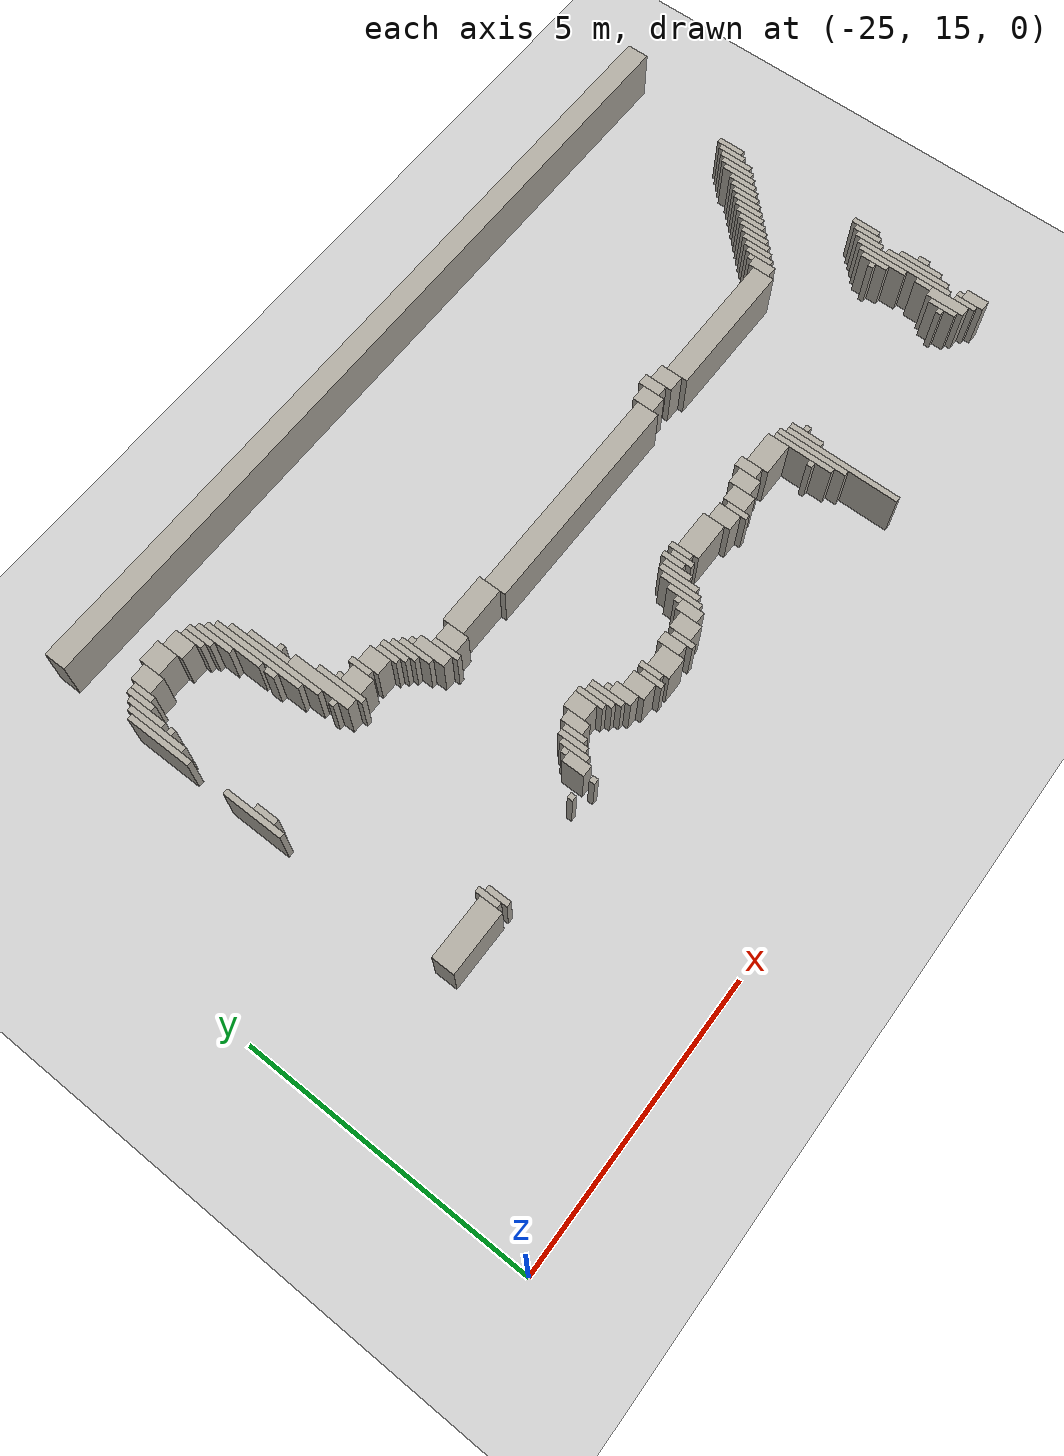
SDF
<sdf version="1.6">
 <world name="willow_office">
  <include><uri>model://sun</uri></include>
  <include><uri>model://ground_plane</uri></include>
  <model name="willow_office_walls">
   <static>true</static>
   <link name="w1010">
    <pose>-12.535 18.312 0.500 0 0 0</pose>
    <collision name="c"><geometry><box><size>0.100 2.100 1.000</size></box></geometry></collision>
    <visual name="v">
     <geometry><box><size>0.100 2.100 1.000</size></box></geometry>
     <material><ambient>0.68 0.66 0.62 1</ambient><diffuse>0.68 0.66 0.62 1</diffuse></material>
    </visual>
   </link>
   <link name="w1034">
    <pose>-8.585 18.262 0.500 0 0 0</pose>
    <collision name="c"><geometry><box><size>0.200 0.400 1.000</size></box></geometry></collision>
    <visual name="v">
     <geometry><box><size>0.200 0.400 1.000</size></box></geometry>
     <material><ambient>0.68 0.66 0.62 1</ambient><diffuse>0.68 0.66 0.62 1</diffuse></material>
    </visual>
   </link>
   <link name="w1035">
    <pose>-22.035 18.362 0.500 0 0 0</pose>
    <collision name="c"><geometry><box><size>1.100 0.400 1.000</size></box></geometry></collision>
    <visual name="v">
     <geometry><box><size>1.100 0.400 1.000</size></box></geometry>
     <material><ambient>0.68 0.66 0.62 1</ambient><diffuse>0.68 0.66 0.62 1</diffuse></material>
    </visual>
   </link>
   <link name="w1036">
    <pose>-21.335 18.362 0.500 0 0 0</pose>
    <collision name="c"><geometry><box><size>0.100 0.400 1.000</size></box></geometry></collision>
    <visual name="v">
     <geometry><box><size>0.100 0.400 1.000</size></box></geometry>
     <material><ambient>0.68 0.66 0.62 1</ambient><diffuse>0.68 0.66 0.62 1</diffuse></material>
    </visual>
   </link>
   <link name="w1037">
    <pose>-12.635 18.812 0.500 0 0 0</pose>
    <collision name="c"><geometry><box><size>0.100 1.300 1.000</size></box></geometry></collision>
    <visual name="v">
     <geometry><box><size>0.100 1.300 1.000</size></box></geometry>
     <material><ambient>0.68 0.66 0.62 1</ambient><diffuse>0.68 0.66 0.62 1</diffuse></material>
    </visual>
   </link>
   <link name="w1038">
    <pose>-8.735 18.362 0.500 0 0 0</pose>
    <collision name="c"><geometry><box><size>0.100 0.400 1.000</size></box></geometry></collision>
    <visual name="v">
     <geometry><box><size>0.100 0.400 1.000</size></box></geometry>
     <material><ambient>0.68 0.66 0.62 1</ambient><diffuse>0.68 0.66 0.62 1</diffuse></material>
    </visual>
   </link>
   <link name="w1041">
    <pose>-21.435 18.462 0.500 0 0 0</pose>
    <collision name="c"><geometry><box><size>0.100 0.400 1.000</size></box></geometry></collision>
    <visual name="v">
     <geometry><box><size>0.100 0.400 1.000</size></box></geometry>
     <material><ambient>0.68 0.66 0.62 1</ambient><diffuse>0.68 0.66 0.62 1</diffuse></material>
    </visual>
   </link>
   <link name="w1042">
    <pose>-19.135 18.312 0.500 0 0 0</pose>
    <collision name="c"><geometry><box><size>0.100 0.100 1.000</size></box></geometry></collision>
    <visual name="v">
     <geometry><box><size>0.100 0.100 1.000</size></box></geometry>
     <material><ambient>0.68 0.66 0.62 1</ambient><diffuse>0.68 0.66 0.62 1</diffuse></material>
    </visual>
   </link>
   <link name="w1043">
    <pose>-8.885 18.612 0.500 0 0 0</pose>
    <collision name="c"><geometry><box><size>0.200 0.700 1.000</size></box></geometry></collision>
    <visual name="v">
     <geometry><box><size>0.200 0.700 1.000</size></box></geometry>
     <material><ambient>0.68 0.66 0.62 1</ambient><diffuse>0.68 0.66 0.62 1</diffuse></material>
    </visual>
   </link>
   <link name="w1044">
    <pose>-19.535 18.412 0.500 0 0 0</pose>
    <collision name="c"><geometry><box><size>0.100 0.100 1.000</size></box></geometry></collision>
    <visual name="v">
     <geometry><box><size>0.100 0.100 1.000</size></box></geometry>
     <material><ambient>0.68 0.66 0.62 1</ambient><diffuse>0.68 0.66 0.62 1</diffuse></material>
    </visual>
   </link>
   <link name="w1045">
    <pose>-17.335 18.562 0.500 0 0 0</pose>
    <collision name="c"><geometry><box><size>0.100 0.400 1.000</size></box></geometry></collision>
    <visual name="v">
     <geometry><box><size>0.100 0.400 1.000</size></box></geometry>
     <material><ambient>0.68 0.66 0.62 1</ambient><diffuse>0.68 0.66 0.62 1</diffuse></material>
    </visual>
   </link>
   <link name="w1046">
    <pose>-16.985 18.562 0.500 0 0 0</pose>
    <collision name="c"><geometry><box><size>0.400 0.400 1.000</size></box></geometry></collision>
    <visual name="v">
     <geometry><box><size>0.400 0.400 1.000</size></box></geometry>
     <material><ambient>0.68 0.66 0.62 1</ambient><diffuse>0.68 0.66 0.62 1</diffuse></material>
    </visual>
   </link>
   <link name="w1047">
    <pose>-16.535 18.562 0.500 0 0 0</pose>
    <collision name="c"><geometry><box><size>0.100 0.400 1.000</size></box></geometry></collision>
    <visual name="v">
     <geometry><box><size>0.100 0.400 1.000</size></box></geometry>
     <material><ambient>0.68 0.66 0.62 1</ambient><diffuse>0.68 0.66 0.62 1</diffuse></material>
    </visual>
   </link>
   <link name="w1048">
    <pose>-12.735 18.912 0.500 0 0 0</pose>
    <collision name="c"><geometry><box><size>0.100 1.100 1.000</size></box></geometry></collision>
    <visual name="v">
     <geometry><box><size>0.100 1.100 1.000</size></box></geometry>
     <material><ambient>0.68 0.66 0.62 1</ambient><diffuse>0.68 0.66 0.62 1</diffuse></material>
    </visual>
   </link>
   <link name="w1049">
    <pose>-9.035 18.612 0.500 0 0 0</pose>
    <collision name="c"><geometry><box><size>0.100 0.500 1.000</size></box></geometry></collision>
    <visual name="v">
     <geometry><box><size>0.100 0.500 1.000</size></box></geometry>
     <material><ambient>0.68 0.66 0.62 1</ambient><diffuse>0.68 0.66 0.62 1</diffuse></material>
    </visual>
   </link>
   <link name="w1050">
    <pose>-19.085 18.662 0.500 0 0 0</pose>
    <collision name="c"><geometry><box><size>0.200 0.400 1.000</size></box></geometry></collision>
    <visual name="v">
     <geometry><box><size>0.200 0.400 1.000</size></box></geometry>
     <material><ambient>0.68 0.66 0.62 1</ambient><diffuse>0.68 0.66 0.62 1</diffuse></material>
    </visual>
   </link>
   <link name="w1051">
    <pose>-17.535 18.662 0.500 0 0 0</pose>
    <collision name="c"><geometry><box><size>0.300 0.400 1.000</size></box></geometry></collision>
    <visual name="v">
     <geometry><box><size>0.300 0.400 1.000</size></box></geometry>
     <material><ambient>0.68 0.66 0.62 1</ambient><diffuse>0.68 0.66 0.62 1</diffuse></material>
    </visual>
   </link>
   <link name="w1052">
    <pose>-17.235 18.662 0.500 0 0 0</pose>
    <collision name="c"><geometry><box><size>0.100 0.400 1.000</size></box></geometry></collision>
    <visual name="v">
     <geometry><box><size>0.100 0.400 1.000</size></box></geometry>
     <material><ambient>0.68 0.66 0.62 1</ambient><diffuse>0.68 0.66 0.62 1</diffuse></material>
    </visual>
   </link>
   <link name="w1053">
    <pose>-16.685 18.662 0.500 0 0 0</pose>
    <collision name="c"><geometry><box><size>0.200 0.400 1.000</size></box></geometry></collision>
    <visual name="v">
     <geometry><box><size>0.200 0.400 1.000</size></box></geometry>
     <material><ambient>0.68 0.66 0.62 1</ambient><diffuse>0.68 0.66 0.62 1</diffuse></material>
    </visual>
   </link>
   <link name="w1054">
    <pose>-16.335 18.662 0.500 0 0 0</pose>
    <collision name="c"><geometry><box><size>0.300 0.400 1.000</size></box></geometry></collision>
    <visual name="v">
     <geometry><box><size>0.300 0.400 1.000</size></box></geometry>
     <material><ambient>0.68 0.66 0.62 1</ambient><diffuse>0.68 0.66 0.62 1</diffuse></material>
    </visual>
   </link>
   <link name="w1055">
    <pose>-8.635 18.512 0.500 0 0 0</pose>
    <collision name="c"><geometry><box><size>0.100 0.100 1.000</size></box></geometry></collision>
    <visual name="v">
     <geometry><box><size>0.100 0.100 1.000</size></box></geometry>
     <material><ambient>0.68 0.66 0.62 1</ambient><diffuse>0.68 0.66 0.62 1</diffuse></material>
    </visual>
   </link>
   <link name="w1056">
    <pose>-18.935 18.812 0.500 0 0 0</pose>
    <collision name="c"><geometry><box><size>0.100 0.500 1.000</size></box></geometry></collision>
    <visual name="v">
     <geometry><box><size>0.100 0.500 1.000</size></box></geometry>
     <material><ambient>0.68 0.66 0.62 1</ambient><diffuse>0.68 0.66 0.62 1</diffuse></material>
    </visual>
   </link>
   <link name="w1057">
    <pose>-17.785 18.762 0.500 0 0 0</pose>
    <collision name="c"><geometry><box><size>0.200 0.400 1.000</size></box></geometry></collision>
    <visual name="v">
     <geometry><box><size>0.200 0.400 1.000</size></box></geometry>
     <material><ambient>0.68 0.66 0.62 1</ambient><diffuse>0.68 0.66 0.62 1</diffuse></material>
    </visual>
   </link>
   <link name="w1058">
    <pose>-16.085 18.762 0.500 0 0 0</pose>
    <collision name="c"><geometry><box><size>0.200 0.400 1.000</size></box></geometry></collision>
    <visual name="v">
     <geometry><box><size>0.200 0.400 1.000</size></box></geometry>
     <material><ambient>0.68 0.66 0.62 1</ambient><diffuse>0.68 0.66 0.62 1</diffuse></material>
    </visual>
   </link>
   <link name="w1059">
    <pose>-9.135 18.612 0.500 0 0 0</pose>
    <collision name="c"><geometry><box><size>0.100 0.100 1.000</size></box></geometry></collision>
    <visual name="v">
     <geometry><box><size>0.100 0.100 1.000</size></box></geometry>
     <material><ambient>0.68 0.66 0.62 1</ambient><diffuse>0.68 0.66 0.62 1</diffuse></material>
    </visual>
   </link>
   <link name="w1061">
    <pose>-18.835 18.912 0.500 0 0 0</pose>
    <collision name="c"><geometry><box><size>0.100 0.500 1.000</size></box></geometry></collision>
    <visual name="v">
     <geometry><box><size>0.100 0.500 1.000</size></box></geometry>
     <material><ambient>0.68 0.66 0.62 1</ambient><diffuse>0.68 0.66 0.62 1</diffuse></material>
    </visual>
   </link>
   <link name="w1062">
    <pose>-17.935 18.962 0.500 0 0 0</pose>
    <collision name="c"><geometry><box><size>0.100 0.600 1.000</size></box></geometry></collision>
    <visual name="v">
     <geometry><box><size>0.100 0.600 1.000</size></box></geometry>
     <material><ambient>0.68 0.66 0.62 1</ambient><diffuse>0.68 0.66 0.62 1</diffuse></material>
    </visual>
   </link>
   <link name="w1063">
    <pose>-15.935 18.962 0.500 0 0 0</pose>
    <collision name="c"><geometry><box><size>0.100 0.600 1.000</size></box></geometry></collision>
    <visual name="v">
     <geometry><box><size>0.100 0.600 1.000</size></box></geometry>
     <material><ambient>0.68 0.66 0.62 1</ambient><diffuse>0.68 0.66 0.62 1</diffuse></material>
    </visual>
   </link>
   <link name="w1064">
    <pose>-12.835 18.712 0.500 0 0 0</pose>
    <collision name="c"><geometry><box><size>0.100 0.100 1.000</size></box></geometry></collision>
    <visual name="v">
     <geometry><box><size>0.100 0.100 1.000</size></box></geometry>
     <material><ambient>0.68 0.66 0.62 1</ambient><diffuse>0.68 0.66 0.62 1</diffuse></material>
    </visual>
   </link>
   <link name="w1065">
    <pose>-8.735 19.562 0.500 0 0 0</pose>
    <collision name="c"><geometry><box><size>0.100 1.800 1.000</size></box></geometry></collision>
    <visual name="v">
     <geometry><box><size>0.100 1.800 1.000</size></box></geometry>
     <material><ambient>0.68 0.66 0.62 1</ambient><diffuse>0.68 0.66 0.62 1</diffuse></material>
    </visual>
   </link>
   <link name="w1066">
    <pose>-18.735 18.962 0.500 0 0 0</pose>
    <collision name="c"><geometry><box><size>0.100 0.400 1.000</size></box></geometry></collision>
    <visual name="v">
     <geometry><box><size>0.100 0.400 1.000</size></box></geometry>
     <material><ambient>0.68 0.66 0.62 1</ambient><diffuse>0.68 0.66 0.62 1</diffuse></material>
    </visual>
   </link>
   <link name="w1067">
    <pose>-18.035 19.012 0.500 0 0 0</pose>
    <collision name="c"><geometry><box><size>0.100 0.500 1.000</size></box></geometry></collision>
    <visual name="v">
     <geometry><box><size>0.100 0.500 1.000</size></box></geometry>
     <material><ambient>0.68 0.66 0.62 1</ambient><diffuse>0.68 0.66 0.62 1</diffuse></material>
    </visual>
   </link>
   <link name="w1068">
    <pose>-15.835 19.112 0.500 0 0 0</pose>
    <collision name="c"><geometry><box><size>0.100 0.700 1.000</size></box></geometry></collision>
    <visual name="v">
     <geometry><box><size>0.100 0.700 1.000</size></box></geometry>
     <material><ambient>0.68 0.66 0.62 1</ambient><diffuse>0.68 0.66 0.62 1</diffuse></material>
    </visual>
   </link>
   <link name="w1069">
    <pose>-12.435 19.062 0.500 0 0 0</pose>
    <collision name="c"><geometry><box><size>0.100 0.600 1.000</size></box></geometry></collision>
    <visual name="v">
     <geometry><box><size>0.100 0.600 1.000</size></box></geometry>
     <material><ambient>0.68 0.66 0.62 1</ambient><diffuse>0.68 0.66 0.62 1</diffuse></material>
    </visual>
   </link>
   <link name="w1070">
    <pose>-8.635 19.362 0.500 0 0 0</pose>
    <collision name="c"><geometry><box><size>0.100 1.200 1.000</size></box></geometry></collision>
    <visual name="v">
     <geometry><box><size>0.100 1.200 1.000</size></box></geometry>
     <material><ambient>0.68 0.66 0.62 1</ambient><diffuse>0.68 0.66 0.62 1</diffuse></material>
    </visual>
   </link>
   <link name="w1072">
    <pose>-19.035 18.912 0.500 0 0 0</pose>
    <collision name="c"><geometry><box><size>0.100 0.100 1.000</size></box></geometry></collision>
    <visual name="v">
     <geometry><box><size>0.100 0.100 1.000</size></box></geometry>
     <material><ambient>0.68 0.66 0.62 1</ambient><diffuse>0.68 0.66 0.62 1</diffuse></material>
    </visual>
   </link>
   <link name="w1073">
    <pose>-18.585 19.062 0.500 0 0 0</pose>
    <collision name="c"><geometry><box><size>0.200 0.400 1.000</size></box></geometry></collision>
    <visual name="v">
     <geometry><box><size>0.200 0.400 1.000</size></box></geometry>
     <material><ambient>0.68 0.66 0.62 1</ambient><diffuse>0.68 0.66 0.62 1</diffuse></material>
    </visual>
   </link>
   <link name="w1074">
    <pose>-18.135 19.112 0.500 0 0 0</pose>
    <collision name="c"><geometry><box><size>0.100 0.500 1.000</size></box></geometry></collision>
    <visual name="v">
     <geometry><box><size>0.100 0.500 1.000</size></box></geometry>
     <material><ambient>0.68 0.66 0.62 1</ambient><diffuse>0.68 0.66 0.62 1</diffuse></material>
    </visual>
   </link>
   <link name="w1075">
    <pose>-15.735 19.212 0.500 0 0 0</pose>
    <collision name="c"><geometry><box><size>0.100 0.700 1.000</size></box></geometry></collision>
    <visual name="v">
     <geometry><box><size>0.100 0.700 1.000</size></box></geometry>
     <material><ambient>0.68 0.66 0.62 1</ambient><diffuse>0.68 0.66 0.62 1</diffuse></material>
    </visual>
   </link>
   <link name="w1077">
    <pose>-18.335 19.162 0.500 0 0 0</pose>
    <collision name="c"><geometry><box><size>0.300 0.400 1.000</size></box></geometry></collision>
    <visual name="v">
     <geometry><box><size>0.300 0.400 1.000</size></box></geometry>
     <material><ambient>0.68 0.66 0.62 1</ambient><diffuse>0.68 0.66 0.62 1</diffuse></material>
    </visual>
   </link>
   <link name="w1078">
    <pose>-17.835 19.012 0.500 0 0 0</pose>
    <collision name="c"><geometry><box><size>0.100 0.100 1.000</size></box></geometry></collision>
    <visual name="v">
     <geometry><box><size>0.100 0.100 1.000</size></box></geometry>
     <material><ambient>0.68 0.66 0.62 1</ambient><diffuse>0.68 0.66 0.62 1</diffuse></material>
    </visual>
   </link>
   <link name="w1079">
    <pose>-16.035 19.012 0.500 0 0 0</pose>
    <collision name="c"><geometry><box><size>0.100 0.100 1.000</size></box></geometry></collision>
    <visual name="v">
     <geometry><box><size>0.100 0.100 1.000</size></box></geometry>
     <material><ambient>0.68 0.66 0.62 1</ambient><diffuse>0.68 0.66 0.62 1</diffuse></material>
    </visual>
   </link>
   <link name="w1080">
    <pose>-14.235 19.162 0.500 0 0 0</pose>
    <collision name="c"><geometry><box><size>0.100 0.400 1.000</size></box></geometry></collision>
    <visual name="v">
     <geometry><box><size>0.100 0.400 1.000</size></box></geometry>
     <material><ambient>0.68 0.66 0.62 1</ambient><diffuse>0.68 0.66 0.62 1</diffuse></material>
    </visual>
   </link>
   <link name="w1081">
    <pose>-8.835 19.112 0.500 0 0 0</pose>
    <collision name="c"><geometry><box><size>0.100 0.300 1.000</size></box></geometry></collision>
    <visual name="v">
     <geometry><box><size>0.100 0.300 1.000</size></box></geometry>
     <material><ambient>0.68 0.66 0.62 1</ambient><diffuse>0.68 0.66 0.62 1</diffuse></material>
    </visual>
   </link>
   <link name="w1082">
    <pose>-8.535 19.362 0.500 0 0 0</pose>
    <collision name="c"><geometry><box><size>0.100 0.800 1.000</size></box></geometry></collision>
    <visual name="v">
     <geometry><box><size>0.100 0.800 1.000</size></box></geometry>
     <material><ambient>0.68 0.66 0.62 1</ambient><diffuse>0.68 0.66 0.62 1</diffuse></material>
    </visual>
   </link>
   <link name="w1084">
    <pose>-15.635 19.312 0.500 0 0 0</pose>
    <collision name="c"><geometry><box><size>0.100 0.500 1.000</size></box></geometry></collision>
    <visual name="v">
     <geometry><box><size>0.100 0.500 1.000</size></box></geometry>
     <material><ambient>0.68 0.66 0.62 1</ambient><diffuse>0.68 0.66 0.62 1</diffuse></material>
    </visual>
   </link>
   <link name="w1085">
    <pose>-14.435 19.262 0.500 0 0 0</pose>
    <collision name="c"><geometry><box><size>0.300 0.400 1.000</size></box></geometry></collision>
    <visual name="v">
     <geometry><box><size>0.300 0.400 1.000</size></box></geometry>
     <material><ambient>0.68 0.66 0.62 1</ambient><diffuse>0.68 0.66 0.62 1</diffuse></material>
    </visual>
   </link>
   <link name="w1086">
    <pose>-14.035 19.262 0.500 0 0 0</pose>
    <collision name="c"><geometry><box><size>0.300 0.400 1.000</size></box></geometry></collision>
    <visual name="v">
     <geometry><box><size>0.300 0.400 1.000</size></box></geometry>
     <material><ambient>0.68 0.66 0.62 1</ambient><diffuse>0.68 0.66 0.62 1</diffuse></material>
    </visual>
   </link>
   <link name="w1087">
    <pose>-12.335 19.112 0.500 0 0 0</pose>
    <collision name="c"><geometry><box><size>0.100 0.100 1.000</size></box></geometry></collision>
    <visual name="v">
     <geometry><box><size>0.100 0.100 1.000</size></box></geometry>
     <material><ambient>0.68 0.66 0.62 1</ambient><diffuse>0.68 0.66 0.62 1</diffuse></material>
    </visual>
   </link>
   <link name="w1088">
    <pose>-15.435 19.362 0.500 0 0 0</pose>
    <collision name="c"><geometry><box><size>0.100 0.400 1.000</size></box></geometry></collision>
    <visual name="v">
     <geometry><box><size>0.100 0.400 1.000</size></box></geometry>
     <material><ambient>0.68 0.66 0.62 1</ambient><diffuse>0.68 0.66 0.62 1</diffuse></material>
    </visual>
   </link>
   <link name="w1089">
    <pose>-14.935 19.362 0.500 0 0 0</pose>
    <collision name="c"><geometry><box><size>0.700 0.400 1.000</size></box></geometry></collision>
    <visual name="v">
     <geometry><box><size>0.700 0.400 1.000</size></box></geometry>
     <material><ambient>0.68 0.66 0.62 1</ambient><diffuse>0.68 0.66 0.62 1</diffuse></material>
    </visual>
   </link>
   <link name="w1090">
    <pose>-13.735 19.362 0.500 0 0 0</pose>
    <collision name="c"><geometry><box><size>0.300 0.400 1.000</size></box></geometry></collision>
    <visual name="v">
     <geometry><box><size>0.300 0.400 1.000</size></box></geometry>
     <material><ambient>0.68 0.66 0.62 1</ambient><diffuse>0.68 0.66 0.62 1</diffuse></material>
    </visual>
   </link>
   <link name="w1091">
    <pose>-13.085 19.362 0.500 0 0 0</pose>
    <collision name="c"><geometry><box><size>0.600 0.400 1.000</size></box></geometry></collision>
    <visual name="v">
     <geometry><box><size>0.600 0.400 1.000</size></box></geometry>
     <material><ambient>0.68 0.66 0.62 1</ambient><diffuse>0.68 0.66 0.62 1</diffuse></material>
    </visual>
   </link>
   <link name="w1095">
    <pose>-15.535 19.462 0.500 0 0 0</pose>
    <collision name="c"><geometry><box><size>0.100 0.400 1.000</size></box></geometry></collision>
    <visual name="v">
     <geometry><box><size>0.100 0.400 1.000</size></box></geometry>
     <material><ambient>0.68 0.66 0.62 1</ambient><diffuse>0.68 0.66 0.62 1</diffuse></material>
    </visual>
   </link>
   <link name="w1096">
    <pose>-15.335 19.462 0.500 0 0 0</pose>
    <collision name="c"><geometry><box><size>0.100 0.400 1.000</size></box></geometry></collision>
    <visual name="v">
     <geometry><box><size>0.100 0.400 1.000</size></box></geometry>
     <material><ambient>0.68 0.66 0.62 1</ambient><diffuse>0.68 0.66 0.62 1</diffuse></material>
    </visual>
   </link>
   <link name="w1097">
    <pose>-13.485 19.462 0.500 0 0 0</pose>
    <collision name="c"><geometry><box><size>0.200 0.400 1.000</size></box></geometry></collision>
    <visual name="v">
     <geometry><box><size>0.200 0.400 1.000</size></box></geometry>
     <material><ambient>0.68 0.66 0.62 1</ambient><diffuse>0.68 0.66 0.62 1</diffuse></material>
    </visual>
   </link>
   <link name="w1098">
    <pose>-8.435 19.362 0.500 0 0 0</pose>
    <collision name="c"><geometry><box><size>0.100 0.200 1.000</size></box></geometry></collision>
    <visual name="v">
     <geometry><box><size>0.100 0.200 1.000</size></box></geometry>
     <material><ambient>0.68 0.66 0.62 1</ambient><diffuse>0.68 0.66 0.62 1</diffuse></material>
    </visual>
   </link>
   <link name="w1106">
    <pose>-8.835 19.912 0.500 0 0 0</pose>
    <collision name="c"><geometry><box><size>0.100 0.900 1.000</size></box></geometry></collision>
    <visual name="v">
     <geometry><box><size>0.100 0.900 1.000</size></box></geometry>
     <material><ambient>0.68 0.66 0.62 1</ambient><diffuse>0.68 0.66 0.62 1</diffuse></material>
    </visual>
   </link>
   <link name="w1114">
    <pose>-8.935 20.012 0.500 0 0 0</pose>
    <collision name="c"><geometry><box><size>0.100 0.500 1.000</size></box></geometry></collision>
    <visual name="v">
     <geometry><box><size>0.100 0.500 1.000</size></box></geometry>
     <material><ambient>0.68 0.66 0.62 1</ambient><diffuse>0.68 0.66 0.62 1</diffuse></material>
    </visual>
   </link>
   <link name="w1121">
    <pose>-9.035 20.012 0.500 0 0 0</pose>
    <collision name="c"><geometry><box><size>0.100 0.100 1.000</size></box></geometry></collision>
    <visual name="v">
     <geometry><box><size>0.100 0.100 1.000</size></box></geometry>
     <material><ambient>0.68 0.66 0.62 1</ambient><diffuse>0.68 0.66 0.62 1</diffuse></material>
    </visual>
   </link>
   <link name="w1128">
    <pose>-8.635 20.312 0.500 0 0 0</pose>
    <collision name="c"><geometry><box><size>0.100 0.500 1.000</size></box></geometry></collision>
    <visual name="v">
     <geometry><box><size>0.100 0.500 1.000</size></box></geometry>
     <material><ambient>0.68 0.66 0.62 1</ambient><diffuse>0.68 0.66 0.62 1</diffuse></material>
    </visual>
   </link>
   <link name="w1131">
    <pose>-8.535 20.412 0.500 0 0 0</pose>
    <collision name="c"><geometry><box><size>0.100 0.500 1.000</size></box></geometry></collision>
    <visual name="v">
     <geometry><box><size>0.100 0.500 1.000</size></box></geometry>
     <material><ambient>0.68 0.66 0.62 1</ambient><diffuse>0.68 0.66 0.62 1</diffuse></material>
    </visual>
   </link>
   <link name="w1134">
    <pose>-8.435 20.512 0.500 0 0 0</pose>
    <collision name="c"><geometry><box><size>0.100 0.500 1.000</size></box></geometry></collision>
    <visual name="v">
     <geometry><box><size>0.100 0.500 1.000</size></box></geometry>
     <material><ambient>0.68 0.66 0.62 1</ambient><diffuse>0.68 0.66 0.62 1</diffuse></material>
    </visual>
   </link>
   <link name="w1149">
    <pose>-18.835 21.312 0.500 0 0 0</pose>
    <collision name="c"><geometry><box><size>0.100 0.500 1.000</size></box></geometry></collision>
    <visual name="v">
     <geometry><box><size>0.100 0.500 1.000</size></box></geometry>
     <material><ambient>0.68 0.66 0.62 1</ambient><diffuse>0.68 0.66 0.62 1</diffuse></material>
    </visual>
   </link>
   <link name="w1152">
    <pose>-18.985 21.462 0.500 0 0 0</pose>
    <collision name="c"><geometry><box><size>0.200 0.600 1.000</size></box></geometry></collision>
    <visual name="v">
     <geometry><box><size>0.200 0.600 1.000</size></box></geometry>
     <material><ambient>0.68 0.66 0.62 1</ambient><diffuse>0.68 0.66 0.62 1</diffuse></material>
    </visual>
   </link>
   <link name="w1153">
    <pose>-18.635 21.362 0.500 0 0 0</pose>
    <collision name="c"><geometry><box><size>0.300 0.400 1.000</size></box></geometry></collision>
    <visual name="v">
     <geometry><box><size>0.300 0.400 1.000</size></box></geometry>
     <material><ambient>0.68 0.66 0.62 1</ambient><diffuse>0.68 0.66 0.62 1</diffuse></material>
    </visual>
   </link>
   <link name="w1154">
    <pose>-15.585 21.362 0.500 0 0 0</pose>
    <collision name="c"><geometry><box><size>4.000 0.400 1.000</size></box></geometry></collision>
    <visual name="v">
     <geometry><box><size>4.000 0.400 1.000</size></box></geometry>
     <material><ambient>0.68 0.66 0.62 1</ambient><diffuse>0.68 0.66 0.62 1</diffuse></material>
    </visual>
   </link>
   <link name="w1155">
    <pose>-11.535 21.362 0.500 0 0 0</pose>
    <collision name="c"><geometry><box><size>2.500 0.400 1.000</size></box></geometry></collision>
    <visual name="v">
     <geometry><box><size>2.500 0.400 1.000</size></box></geometry>
     <material><ambient>0.68 0.66 0.62 1</ambient><diffuse>0.68 0.66 0.62 1</diffuse></material>
    </visual>
   </link>
   <link name="w1157">
    <pose>-18.035 21.462 0.500 0 0 0</pose>
    <collision name="c"><geometry><box><size>0.900 0.400 1.000</size></box></geometry></collision>
    <visual name="v">
     <geometry><box><size>0.900 0.400 1.000</size></box></geometry>
     <material><ambient>0.68 0.66 0.62 1</ambient><diffuse>0.68 0.66 0.62 1</diffuse></material>
    </visual>
   </link>
   <link name="w1158">
    <pose>-13.435 21.462 0.500 0 0 0</pose>
    <collision name="c"><geometry><box><size>0.300 0.400 1.000</size></box></geometry></collision>
    <visual name="v">
     <geometry><box><size>0.300 0.400 1.000</size></box></geometry>
     <material><ambient>0.68 0.66 0.62 1</ambient><diffuse>0.68 0.66 0.62 1</diffuse></material>
    </visual>
   </link>
   <link name="w1159">
    <pose>-12.935 21.462 0.500 0 0 0</pose>
    <collision name="c"><geometry><box><size>0.300 0.400 1.000</size></box></geometry></collision>
    <visual name="v">
     <geometry><box><size>0.300 0.400 1.000</size></box></geometry>
     <material><ambient>0.68 0.66 0.62 1</ambient><diffuse>0.68 0.66 0.62 1</diffuse></material>
    </visual>
   </link>
   <link name="w1160">
    <pose>-10.185 21.462 0.500 0 0 0</pose>
    <collision name="c"><geometry><box><size>0.200 0.400 1.000</size></box></geometry></collision>
    <visual name="v">
     <geometry><box><size>0.200 0.400 1.000</size></box></geometry>
     <material><ambient>0.68 0.66 0.62 1</ambient><diffuse>0.68 0.66 0.62 1</diffuse></material>
    </visual>
   </link>
   <link name="w1162">
    <pose>-22.535 21.912 0.500 0 0 0</pose>
    <collision name="c"><geometry><box><size>0.100 1.100 1.000</size></box></geometry></collision>
    <visual name="v">
     <geometry><box><size>0.100 1.100 1.000</size></box></geometry>
     <material><ambient>0.68 0.66 0.62 1</ambient><diffuse>0.68 0.66 0.62 1</diffuse></material>
    </visual>
   </link>
   <link name="w1163">
    <pose>-19.135 21.662 0.500 0 0 0</pose>
    <collision name="c"><geometry><box><size>0.100 0.600 1.000</size></box></geometry></collision>
    <visual name="v">
     <geometry><box><size>0.100 0.600 1.000</size></box></geometry>
     <material><ambient>0.68 0.66 0.62 1</ambient><diffuse>0.68 0.66 0.62 1</diffuse></material>
    </visual>
   </link>
   <link name="w1164">
    <pose>-13.185 21.562 0.500 0 0 0</pose>
    <collision name="c"><geometry><box><size>0.200 0.400 1.000</size></box></geometry></collision>
    <visual name="v">
     <geometry><box><size>0.200 0.400 1.000</size></box></geometry>
     <material><ambient>0.68 0.66 0.62 1</ambient><diffuse>0.68 0.66 0.62 1</diffuse></material>
    </visual>
   </link>
   <link name="w1165">
    <pose>-10.035 21.612 0.500 0 0 0</pose>
    <collision name="c"><geometry><box><size>0.100 0.500 1.000</size></box></geometry></collision>
    <visual name="v">
     <geometry><box><size>0.100 0.500 1.000</size></box></geometry>
     <material><ambient>0.68 0.66 0.62 1</ambient><diffuse>0.68 0.66 0.62 1</diffuse></material>
    </visual>
   </link>
   <link name="w1168">
    <pose>-9.935 21.712 0.500 0 0 0</pose>
    <collision name="c"><geometry><box><size>0.100 0.500 1.000</size></box></geometry></collision>
    <visual name="v">
     <geometry><box><size>0.100 0.500 1.000</size></box></geometry>
     <material><ambient>0.68 0.66 0.62 1</ambient><diffuse>0.68 0.66 0.62 1</diffuse></material>
    </visual>
   </link>
   <link name="w1171">
    <pose>-22.435 21.762 0.500 0 0 0</pose>
    <collision name="c"><geometry><box><size>0.100 0.400 1.000</size></box></geometry></collision>
    <visual name="v">
     <geometry><box><size>0.100 0.400 1.000</size></box></geometry>
     <material><ambient>0.68 0.66 0.62 1</ambient><diffuse>0.68 0.66 0.62 1</diffuse></material>
    </visual>
   </link>
   <link name="w1172">
    <pose>-19.235 21.812 0.500 0 0 0</pose>
    <collision name="c"><geometry><box><size>0.100 0.500 1.000</size></box></geometry></collision>
    <visual name="v">
     <geometry><box><size>0.100 0.500 1.000</size></box></geometry>
     <material><ambient>0.68 0.66 0.62 1</ambient><diffuse>0.68 0.66 0.62 1</diffuse></material>
    </visual>
   </link>
   <link name="w1173">
    <pose>-9.835 21.812 0.500 0 0 0</pose>
    <collision name="c"><geometry><box><size>0.100 0.500 1.000</size></box></geometry></collision>
    <visual name="v">
     <geometry><box><size>0.100 0.500 1.000</size></box></geometry>
     <material><ambient>0.68 0.66 0.62 1</ambient><diffuse>0.68 0.66 0.62 1</diffuse></material>
    </visual>
   </link>
   <link name="w1175">
    <pose>-19.335 21.912 0.500 0 0 0</pose>
    <collision name="c"><geometry><box><size>0.100 0.500 1.000</size></box></geometry></collision>
    <visual name="v">
     <geometry><box><size>0.100 0.500 1.000</size></box></geometry>
     <material><ambient>0.68 0.66 0.62 1</ambient><diffuse>0.68 0.66 0.62 1</diffuse></material>
    </visual>
   </link>
   <link name="w1176">
    <pose>-10.135 21.712 0.500 0 0 0</pose>
    <collision name="c"><geometry><box><size>0.100 0.100 1.000</size></box></geometry></collision>
    <visual name="v">
     <geometry><box><size>0.100 0.100 1.000</size></box></geometry>
     <material><ambient>0.68 0.66 0.62 1</ambient><diffuse>0.68 0.66 0.62 1</diffuse></material>
    </visual>
   </link>
   <link name="w1177">
    <pose>-9.735 21.912 0.500 0 0 0</pose>
    <collision name="c"><geometry><box><size>0.100 0.500 1.000</size></box></geometry></collision>
    <visual name="v">
     <geometry><box><size>0.100 0.500 1.000</size></box></geometry>
     <material><ambient>0.68 0.66 0.62 1</ambient><diffuse>0.68 0.66 0.62 1</diffuse></material>
    </visual>
   </link>
   <link name="w1180">
    <pose>-20.235 22.212 0.500 0 0 0</pose>
    <collision name="c"><geometry><box><size>0.100 0.900 1.000</size></box></geometry></collision>
    <visual name="v">
     <geometry><box><size>0.100 0.900 1.000</size></box></geometry>
     <material><ambient>0.68 0.66 0.62 1</ambient><diffuse>0.68 0.66 0.62 1</diffuse></material>
    </visual>
   </link>
   <link name="w1181">
    <pose>-19.435 21.962 0.500 0 0 0</pose>
    <collision name="c"><geometry><box><size>0.100 0.400 1.000</size></box></geometry></collision>
    <visual name="v">
     <geometry><box><size>0.100 0.400 1.000</size></box></geometry>
     <material><ambient>0.68 0.66 0.62 1</ambient><diffuse>0.68 0.66 0.62 1</diffuse></material>
    </visual>
   </link>
   <link name="w1182">
    <pose>-19.035 21.812 0.500 0 0 0</pose>
    <collision name="c"><geometry><box><size>0.100 0.100 1.000</size></box></geometry></collision>
    <visual name="v">
     <geometry><box><size>0.100 0.100 1.000</size></box></geometry>
     <material><ambient>0.68 0.66 0.62 1</ambient><diffuse>0.68 0.66 0.62 1</diffuse></material>
    </visual>
   </link>
   <link name="w1183">
    <pose>-9.635 22.012 0.500 0 0 0</pose>
    <collision name="c"><geometry><box><size>0.100 0.500 1.000</size></box></geometry></collision>
    <visual name="v">
     <geometry><box><size>0.100 0.500 1.000</size></box></geometry>
     <material><ambient>0.68 0.66 0.62 1</ambient><diffuse>0.68 0.66 0.62 1</diffuse></material>
    </visual>
   </link>
   <link name="w1185">
    <pose>-20.385 22.462 0.500 0 0 0</pose>
    <collision name="c"><geometry><box><size>0.200 1.200 1.000</size></box></geometry></collision>
    <visual name="v">
     <geometry><box><size>0.200 1.200 1.000</size></box></geometry>
     <material><ambient>0.68 0.66 0.62 1</ambient><diffuse>0.68 0.66 0.62 1</diffuse></material>
    </visual>
   </link>
   <link name="w1186">
    <pose>-20.035 22.062 0.500 0 0 0</pose>
    <collision name="c"><geometry><box><size>0.300 0.400 1.000</size></box></geometry></collision>
    <visual name="v">
     <geometry><box><size>0.300 0.400 1.000</size></box></geometry>
     <material><ambient>0.68 0.66 0.62 1</ambient><diffuse>0.68 0.66 0.62 1</diffuse></material>
    </visual>
   </link>
   <link name="w1187">
    <pose>-19.635 22.062 0.500 0 0 0</pose>
    <collision name="c"><geometry><box><size>0.300 0.400 1.000</size></box></geometry></collision>
    <visual name="v">
     <geometry><box><size>0.300 0.400 1.000</size></box></geometry>
     <material><ambient>0.68 0.66 0.62 1</ambient><diffuse>0.68 0.66 0.62 1</diffuse></material>
    </visual>
   </link>
   <link name="w1188">
    <pose>-9.535 22.112 0.500 0 0 0</pose>
    <collision name="c"><geometry><box><size>0.100 0.500 1.000</size></box></geometry></collision>
    <visual name="v">
     <geometry><box><size>0.100 0.500 1.000</size></box></geometry>
     <material><ambient>0.68 0.66 0.62 1</ambient><diffuse>0.68 0.66 0.62 1</diffuse></material>
    </visual>
   </link>
   <link name="w1191">
    <pose>-19.835 22.162 0.500 0 0 0</pose>
    <collision name="c"><geometry><box><size>0.100 0.400 1.000</size></box></geometry></collision>
    <visual name="v">
     <geometry><box><size>0.100 0.400 1.000</size></box></geometry>
     <material><ambient>0.68 0.66 0.62 1</ambient><diffuse>0.68 0.66 0.62 1</diffuse></material>
    </visual>
   </link>
   <link name="w1192">
    <pose>-9.435 22.212 0.500 0 0 0</pose>
    <collision name="c"><geometry><box><size>0.100 0.500 1.000</size></box></geometry></collision>
    <visual name="v">
     <geometry><box><size>0.100 0.500 1.000</size></box></geometry>
     <material><ambient>0.68 0.66 0.62 1</ambient><diffuse>0.68 0.66 0.62 1</diffuse></material>
    </visual>
   </link>
   <link name="w1197">
    <pose>-20.535 22.112 0.500 0 0 0</pose>
    <collision name="c"><geometry><box><size>0.100 0.100 1.000</size></box></geometry></collision>
    <visual name="v">
     <geometry><box><size>0.100 0.100 1.000</size></box></geometry>
     <material><ambient>0.68 0.66 0.62 1</ambient><diffuse>0.68 0.66 0.62 1</diffuse></material>
    </visual>
   </link>
   <link name="w1198">
    <pose>-9.335 22.312 0.500 0 0 0</pose>
    <collision name="c"><geometry><box><size>0.100 0.500 1.000</size></box></geometry></collision>
    <visual name="v">
     <geometry><box><size>0.100 0.500 1.000</size></box></geometry>
     <material><ambient>0.68 0.66 0.62 1</ambient><diffuse>0.68 0.66 0.62 1</diffuse></material>
    </visual>
   </link>
   <link name="w1205">
    <pose>-9.235 22.412 0.500 0 0 0</pose>
    <collision name="c"><geometry><box><size>0.100 0.500 1.000</size></box></geometry></collision>
    <visual name="v">
     <geometry><box><size>0.100 0.500 1.000</size></box></geometry>
     <material><ambient>0.68 0.66 0.62 1</ambient><diffuse>0.68 0.66 0.62 1</diffuse></material>
    </visual>
   </link>
   <link name="w1210">
    <pose>-20.135 22.312 0.500 0 0 0</pose>
    <collision name="c"><geometry><box><size>0.100 0.100 1.000</size></box></geometry></collision>
    <visual name="v">
     <geometry><box><size>0.100 0.100 1.000</size></box></geometry>
     <material><ambient>0.68 0.66 0.62 1</ambient><diffuse>0.68 0.66 0.62 1</diffuse></material>
    </visual>
   </link>
   <link name="w1211">
    <pose>-9.135 22.512 0.500 0 0 0</pose>
    <collision name="c"><geometry><box><size>0.100 0.500 1.000</size></box></geometry></collision>
    <visual name="v">
     <geometry><box><size>0.100 0.500 1.000</size></box></geometry>
     <material><ambient>0.68 0.66 0.62 1</ambient><diffuse>0.68 0.66 0.62 1</diffuse></material>
    </visual>
   </link>
   <link name="w1214">
    <pose>-20.535 23.262 0.500 0 0 0</pose>
    <collision name="c"><geometry><box><size>0.100 1.800 1.000</size></box></geometry></collision>
    <visual name="v">
     <geometry><box><size>0.100 1.800 1.000</size></box></geometry>
     <material><ambient>0.68 0.66 0.62 1</ambient><diffuse>0.68 0.66 0.62 1</diffuse></material>
    </visual>
   </link>
   <link name="w1215">
    <pose>-9.035 22.612 0.500 0 0 0</pose>
    <collision name="c"><geometry><box><size>0.100 0.500 1.000</size></box></geometry></collision>
    <visual name="v">
     <geometry><box><size>0.100 0.500 1.000</size></box></geometry>
     <material><ambient>0.68 0.66 0.62 1</ambient><diffuse>0.68 0.66 0.62 1</diffuse></material>
    </visual>
   </link>
   <link name="w1228">
    <pose>-8.935 22.712 0.500 0 0 0</pose>
    <collision name="c"><geometry><box><size>0.100 0.500 1.000</size></box></geometry></collision>
    <visual name="v">
     <geometry><box><size>0.100 0.500 1.000</size></box></geometry>
     <material><ambient>0.68 0.66 0.62 1</ambient><diffuse>0.68 0.66 0.62 1</diffuse></material>
    </visual>
   </link>
   <link name="w1248">
    <pose>-8.835 22.862 0.500 0 0 0</pose>
    <collision name="c"><geometry><box><size>0.100 0.600 1.000</size></box></geometry></collision>
    <visual name="v">
     <geometry><box><size>0.100 0.600 1.000</size></box></geometry>
     <material><ambient>0.68 0.66 0.62 1</ambient><diffuse>0.68 0.66 0.62 1</diffuse></material>
    </visual>
   </link>
   <link name="w1261">
    <pose>-20.635 23.512 0.500 0 0 0</pose>
    <collision name="c"><geometry><box><size>0.100 1.700 1.000</size></box></geometry></collision>
    <visual name="v">
     <geometry><box><size>0.100 1.700 1.000</size></box></geometry>
     <material><ambient>0.68 0.66 0.62 1</ambient><diffuse>0.68 0.66 0.62 1</diffuse></material>
    </visual>
   </link>
   <link name="w1262">
    <pose>-8.735 22.962 0.500 0 0 0</pose>
    <collision name="c"><geometry><box><size>0.100 0.600 1.000</size></box></geometry></collision>
    <visual name="v">
     <geometry><box><size>0.100 0.600 1.000</size></box></geometry>
     <material><ambient>0.68 0.66 0.62 1</ambient><diffuse>0.68 0.66 0.62 1</diffuse></material>
    </visual>
   </link>
   <link name="w1265">
    <pose>-8.635 23.062 0.500 0 0 0</pose>
    <collision name="c"><geometry><box><size>0.100 0.600 1.000</size></box></geometry></collision>
    <visual name="v">
     <geometry><box><size>0.100 0.600 1.000</size></box></geometry>
     <material><ambient>0.68 0.66 0.62 1</ambient><diffuse>0.68 0.66 0.62 1</diffuse></material>
    </visual>
   </link>
   <link name="w1266">
    <pose>-8.535 23.212 0.500 0 0 0</pose>
    <collision name="c"><geometry><box><size>0.100 0.500 1.000</size></box></geometry></collision>
    <visual name="v">
     <geometry><box><size>0.100 0.500 1.000</size></box></geometry>
     <material><ambient>0.68 0.66 0.62 1</ambient><diffuse>0.68 0.66 0.62 1</diffuse></material>
    </visual>
   </link>
   <link name="w1267">
    <pose>-20.735 23.162 0.500 0 0 0</pose>
    <collision name="c"><geometry><box><size>0.100 0.200 1.000</size></box></geometry></collision>
    <visual name="v">
     <geometry><box><size>0.100 0.200 1.000</size></box></geometry>
     <material><ambient>0.68 0.66 0.62 1</ambient><diffuse>0.68 0.66 0.62 1</diffuse></material>
    </visual>
   </link>
   <link name="w1268">
    <pose>-20.435 23.462 0.500 0 0 0</pose>
    <collision name="c"><geometry><box><size>0.100 0.800 1.000</size></box></geometry></collision>
    <visual name="v">
     <geometry><box><size>0.100 0.800 1.000</size></box></geometry>
     <material><ambient>0.68 0.66 0.62 1</ambient><diffuse>0.68 0.66 0.62 1</diffuse></material>
    </visual>
   </link>
   <link name="w1269">
    <pose>-8.435 23.312 0.500 0 0 0</pose>
    <collision name="c"><geometry><box><size>0.100 0.500 1.000</size></box></geometry></collision>
    <visual name="v">
     <geometry><box><size>0.100 0.500 1.000</size></box></geometry>
     <material><ambient>0.68 0.66 0.62 1</ambient><diffuse>0.68 0.66 0.62 1</diffuse></material>
    </visual>
   </link>
   <link name="w1270">
    <pose>-22.535 23.762 0.500 0 0 0</pose>
    <collision name="c"><geometry><box><size>0.100 1.200 1.000</size></box></geometry></collision>
    <visual name="v">
     <geometry><box><size>0.100 1.200 1.000</size></box></geometry>
     <material><ambient>0.68 0.66 0.62 1</ambient><diffuse>0.68 0.66 0.62 1</diffuse></material>
    </visual>
   </link>
   <link name="w1272">
    <pose>-20.335 23.312 0.500 0 0 0</pose>
    <collision name="c"><geometry><box><size>0.100 0.100 1.000</size></box></geometry></collision>
    <visual name="v">
     <geometry><box><size>0.100 0.100 1.000</size></box></geometry>
     <material><ambient>0.68 0.66 0.62 1</ambient><diffuse>0.68 0.66 0.62 1</diffuse></material>
    </visual>
   </link>
   <link name="w1274">
    <pose>-22.435 23.912 0.500 0 0 0</pose>
    <collision name="c"><geometry><box><size>0.100 1.100 1.000</size></box></geometry></collision>
    <visual name="v">
     <geometry><box><size>0.100 1.100 1.000</size></box></geometry>
     <material><ambient>0.68 0.66 0.62 1</ambient><diffuse>0.68 0.66 0.62 1</diffuse></material>
    </visual>
   </link>
   <link name="w1275">
    <pose>-20.735 23.912 0.500 0 0 0</pose>
    <collision name="c"><geometry><box><size>0.100 1.100 1.000</size></box></geometry></collision>
    <visual name="v">
     <geometry><box><size>0.100 1.100 1.000</size></box></geometry>
     <material><ambient>0.68 0.66 0.62 1</ambient><diffuse>0.68 0.66 0.62 1</diffuse></material>
    </visual>
   </link>
   <link name="w1279">
    <pose>-22.335 23.712 0.500 0 0 0</pose>
    <collision name="c"><geometry><box><size>0.100 0.100 1.000</size></box></geometry></collision>
    <visual name="v">
     <geometry><box><size>0.100 0.100 1.000</size></box></geometry>
     <material><ambient>0.68 0.66 0.62 1</ambient><diffuse>0.68 0.66 0.62 1</diffuse></material>
    </visual>
   </link>
   <link name="w1282">
    <pose>-22.335 24.212 0.500 0 0 0</pose>
    <collision name="c"><geometry><box><size>0.100 0.700 1.000</size></box></geometry></collision>
    <visual name="v">
     <geometry><box><size>0.100 0.700 1.000</size></box></geometry>
     <material><ambient>0.68 0.66 0.62 1</ambient><diffuse>0.68 0.66 0.62 1</diffuse></material>
    </visual>
   </link>
   <link name="w1283">
    <pose>-20.835 24.212 0.500 0 0 0</pose>
    <collision name="c"><geometry><box><size>0.100 0.700 1.000</size></box></geometry></collision>
    <visual name="v">
     <geometry><box><size>0.100 0.700 1.000</size></box></geometry>
     <material><ambient>0.68 0.66 0.62 1</ambient><diffuse>0.68 0.66 0.62 1</diffuse></material>
    </visual>
   </link>
   <link name="w1287">
    <pose>-22.235 24.412 0.500 0 0 0</pose>
    <collision name="c"><geometry><box><size>0.100 0.500 1.000</size></box></geometry></collision>
    <visual name="v">
     <geometry><box><size>0.100 0.500 1.000</size></box></geometry>
     <material><ambient>0.68 0.66 0.62 1</ambient><diffuse>0.68 0.66 0.62 1</diffuse></material>
    </visual>
   </link>
   <link name="w1288">
    <pose>-20.935 24.412 0.500 0 0 0</pose>
    <collision name="c"><geometry><box><size>0.100 0.500 1.000</size></box></geometry></collision>
    <visual name="v">
     <geometry><box><size>0.100 0.500 1.000</size></box></geometry>
     <material><ambient>0.68 0.66 0.62 1</ambient><diffuse>0.68 0.66 0.62 1</diffuse></material>
    </visual>
   </link>
   <link name="w1290">
    <pose>-22.135 24.462 0.500 0 0 0</pose>
    <collision name="c"><geometry><box><size>0.100 0.400 1.000</size></box></geometry></collision>
    <visual name="v">
     <geometry><box><size>0.100 0.400 1.000</size></box></geometry>
     <material><ambient>0.68 0.66 0.62 1</ambient><diffuse>0.68 0.66 0.62 1</diffuse></material>
    </visual>
   </link>
   <link name="w1291">
    <pose>-21.035 24.462 0.500 0 0 0</pose>
    <collision name="c"><geometry><box><size>0.100 0.400 1.000</size></box></geometry></collision>
    <visual name="v">
     <geometry><box><size>0.100 0.400 1.000</size></box></geometry>
     <material><ambient>0.68 0.66 0.62 1</ambient><diffuse>0.68 0.66 0.62 1</diffuse></material>
    </visual>
   </link>
   <link name="w1302">
    <pose>-21.935 24.562 0.500 0 0 0</pose>
    <collision name="c"><geometry><box><size>0.300 0.400 1.000</size></box></geometry></collision>
    <visual name="v">
     <geometry><box><size>0.300 0.400 1.000</size></box></geometry>
     <material><ambient>0.68 0.66 0.62 1</ambient><diffuse>0.68 0.66 0.62 1</diffuse></material>
    </visual>
   </link>
   <link name="w1303">
    <pose>-21.235 24.562 0.500 0 0 0</pose>
    <collision name="c"><geometry><box><size>0.300 0.400 1.000</size></box></geometry></collision>
    <visual name="v">
     <geometry><box><size>0.300 0.400 1.000</size></box></geometry>
     <material><ambient>0.68 0.66 0.62 1</ambient><diffuse>0.68 0.66 0.62 1</diffuse></material>
    </visual>
   </link>
   <link name="w1323">
    <pose>-21.585 24.662 0.500 0 0 0</pose>
    <collision name="c"><geometry><box><size>0.400 0.400 1.000</size></box></geometry></collision>
    <visual name="v">
     <geometry><box><size>0.400 0.400 1.000</size></box></geometry>
     <material><ambient>0.68 0.66 0.62 1</ambient><diffuse>0.68 0.66 0.62 1</diffuse></material>
    </visual>
   </link>
   <link name="w1369">
    <pose>-15.135 25.862 0.500 0 0 0</pose>
    <collision name="c"><geometry><box><size>14.900 0.400 1.000</size></box></geometry></collision>
    <visual name="v">
     <geometry><box><size>14.900 0.400 1.000</size></box></geometry>
     <material><ambient>0.68 0.66 0.62 1</ambient><diffuse>0.68 0.66 0.62 1</diffuse></material>
    </visual>
   </link>
  </model>
 </world>
</sdf>
